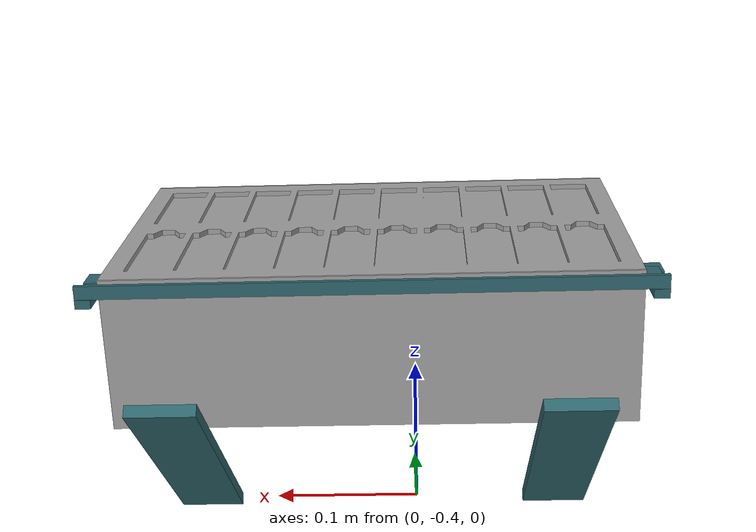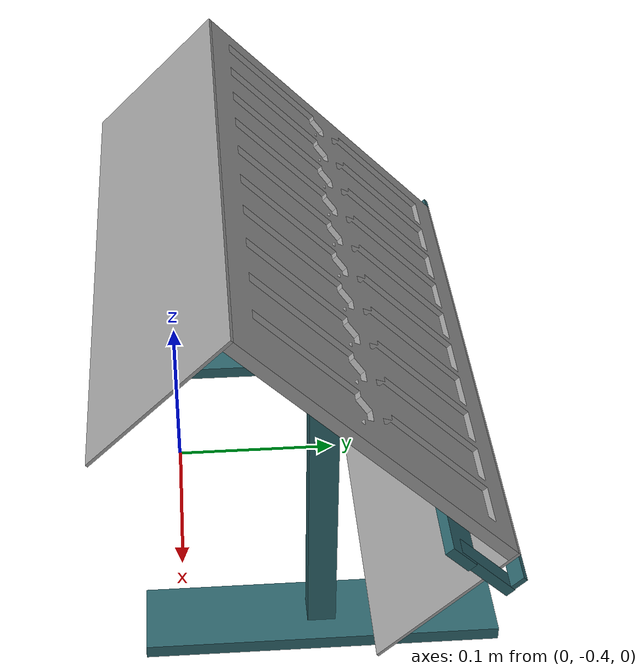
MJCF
<?xml version='1.0' encoding='utf-8'?>
<mujoco model="QC folder cradle 45 degrees - fixed inspection only">
  <compiler angle="radian" />
  <visual>
    <global offwidth="1400" offheight="900" />
  </visual>
  <asset>
    <mesh name="lab_context_qc45_folder_visual_0" vertex="-0.01200000191 0.02499999237 0.003600000143 -0.004205774307 0.02050000381 0.003600000143 -0.004205774307 0.01150000763 0.003600000143 -0.01200000191 0.007 0.003600000143 -0.01200000191 0.007 0.007200000286 -0.004205774307 0.01150000763 0.007200000286 -0.004205774307 0.02050000381 0.007200000286 -0.01200000191 0.02499999237 0.007200000286 0.01200000381 -0.03900000381 0.003600000143 0.01200000381 -0.03449999619 0.003600000143 0.01200000381 -0.03449999619 0.007200000286 0.01200000381 -0.03900000381 0.007200000286 0.08899999237 -0.02949999619 0.003600000143 0.01200000381 -0.02949999619 0.003600000143 0.01200000381 -0.02949999619 0.007200000286 0.08899999237 -0.02949999619 0.007200000286 -0.089 -0.1255 0.003600000143 -0.089 -0.09850000191 0.003600000143 -0.089 -0.09850000191 0.007200000286 -0.089 -0.1255 0.007200000286 -0.089 -0.03449999619 0.003600000143 -0.01200000191 -0.03449999619 0.003600000143 -0.01200000191 -0.03449999619 0.007200000286 -0.089 -0.03449999619 0.007200000286 -0.089 0.06650000763 0.003600000143 -0.089 0.09349999619 0.003600000143 -0.089 0.09349999619 0.007200000286 -0.089 0.06650000763 0.007200000286 -0.089 -0.1305 0.003600000143 -0.01200000191 -0.1305 0.003600000143 -0.01200000191 -0.1305 0.007200000286 -0.089 -0.1305 0.007200000286 -0.01200000191 -0.09850000191 0.003600000143 -0.01200000191 -0.103 0.003600000143 -0.01200000191 -0.103 0.007200000286 -0.01200000191 -0.09850000191 0.007200000286 -0.01200000191 0.07099999619 0.003600000143 -0.004205774307 0.07550000381 0.003600000143 -0.004205774307 0.0845 0.003600000143 -0.01200000191 0.08900000763 0.003600000143 -0.01200000191 0.09349999619 0.003600000143 -0.01200000191 0.06650000763 0.003600000143 -0.089 0.1574999924 0.003600000143 -0.01200000191 0.1574999924 0.003600000143 -0.01200000191 0.1574999924 0.007200000286 -0.089 0.1574999924 0.007200000286 0.01200000381 -0.05699999619 0.003600000143 0.004205766678 -0.05249999809 0.003600000143 0.004205766678 -0.04350000191 0.003600000143 0.004205766678 -0.04350000191 0.007200000286 0.004205766678 -0.05249999809 0.007200000286 0.01200000381 -0.05699999619 0.007200000286 0.01200000381 -0.103 0.003600000143 0.01200000381 -0.09850000191 0.003600000143 0.01200000381 -0.09850000191 0.007200000286 0.01200000381 -0.103 0.007200000286 0.01200000381 -0.07100000191 0.003600000143 0.004205766678 -0.0755 0.003600000143 0.004205766678 -0.08449999619 0.003600000143 0.01200000381 -0.08900000381 0.003600000143 0.01200000381 -0.09350000191 0.003600000143 0.08899999237 -0.09350000191 0.003600000143 0.08899999237 -0.06650000381 0.003600000143 0.01200000381 -0.06650000381 0.003600000143 0.08899999237 0.1574999924 0.003600000143 0.08899999237 0.1305000038 0.003600000143 0.08899999237 0.1305000038 0.007200000286 0.08899999237 0.1574999924 0.007200000286 0.01200000381 -0.002500007629 0.003600000143 0.08899999237 -0.002500007629 0.003600000143 0.08899999237 -0.002500007629 0.007200000286 0.01200000381 -0.002500007629 0.007200000286 0.01200000381 0.1529999847 0.003600000143 0.01200000381 0.1574999924 0.003600000143 0.01200000381 0.1574999924 0.007200000286 0.01200000381 0.1529999847 0.007200000286 0.1039999924 -0.1705 0 0.1039999924 0.1704999847 0 0.1039999924 0.1704999847 0.007200000286 0.1039999924 -0.1705 0.007200000286 0.08899999237 0.09849999619 0.003600000143 0.01200000381 0.09849999619 0.003600000143 0.01200000381 0.09849999619 0.007200000286 0.08899999237 0.09849999619 0.007200000286 0.01200000381 0.0295 0.003600000143 0.08899999237 0.0295 0.003600000143 0.08899999237 0.0295 0.007200000286 0.01200000381 0.0295 0.007200000286 -0.01200000191 0.002499992371 0.003600000143 -0.01200000191 0.002499992371 0.007200000286 -0.01200000191 -0.002500007629 0.003600000143 -0.01200000191 -0.006999996185 0.003600000143 -0.01200000191 -0.006999996185 0.007200000286 -0.01200000191 -0.002500007629 0.007200000286 -0.01200000191 0.07099999619 0.007200000286 -0.004205774307 0.07550000381 0.007200000286 -0.004205774307 0.0845 0.007200000286 -0.01200000191 0.08900000763 0.007200000286 0.01200000381 0.1255000038 0.003600000143 0.08899999237 0.1255000038 0.003600000143 0.08899999237 0.1255000038 0.007200000286 0.01200000381 0.1255000038 0.007200000286 0.08899999237 -0.09850000191 0.003600000143 0.08899999237 -0.1255 0.003600000143 0.08899999237 -0.1255 0.007200000286 0.08899999237 -0.09850000191 0.007200000286 -0.01200000191 0.1305000038 0.003600000143 -0.089 0.1305000038 0.003600000143 -0.089 0.1305000038 0.007200000286 -0.01200000191 0.1305000038 0.007200000286 0.08899999237 -0.09350000191 0.007200000286 0.08899999237 -0.06650000381 0.007200000286 0.01200000381 0.09349999619 0.003600000143 0.08899999237 0.09349999619 0.003600000143 0.08899999237 0.09349999619 0.007200000286 0.01200000381 0.09349999619 0.007200000286 -0.01200000191 -0.1210000019 0.003600000143 -0.01200000191 -0.1255 0.003600000143 -0.01200000191 -0.1255 0.007200000286 -0.01200000191 -0.1210000019 0.007200000286 -0.01200000191 -0.1350000005 0.003600000143 -0.004205774307 -0.139500001 0.003600000143 -0.004205774307 -0.1484999995 0.003600000143 -0.01200000191 -0.153 0.003600000143 -0.01200000191 -0.153 0.007200000286 -0.004205774307 -0.1484999995 0.007200000286 -0.004205774307 -0.139500001 0.007200000286 -0.01200000191 -0.1350000005 0.007200000286 -0.01200000191 -0.1575000005 0.003600000143 -0.089 -0.1575000005 0.003600000143 -0.089 -0.1575000005 0.007200000286 -0.01200000191 -0.1575000005 0.007200000286 -0.01200000191 0.06650000763 0.007200000286 -0.104 -0.1705 0 -0.104 0.1704999847 0 0.01200000381 0.1030000038 0.003600000143 0.004205766678 0.1074999924 0.003600000143 0.004205766678 0.1165000076 0.003600000143 0.01200000381 0.1209999962 0.003600000143 0.01200000381 0.1209999962 0.007200000286 0.004205766678 0.1165000076 0.007200000286 0.004205766678 0.1074999924 0.007200000286 0.01200000381 0.1030000038 0.007200000286 -0.089 0.1255000038 0.003600000143 -0.01200000191 0.1255000038 0.003600000143 -0.01200000191 0.1255000038 0.007200000286 -0.089 0.1255000038 0.007200000286 0.01200000381 0.03900000763 0.003600000143 0.004205766678 0.04349999619 0.003600000143 0.004205766678 0.05249999237 0.003600000143 0.01200000381 0.057 0.003600000143 0.01200000381 0.057 0.007200000286 0.004205766678 0.05249999237 0.007200000286 0.004205766678 0.04349999619 0.007200000286 0.01200000381 0.03900000763 0.007200000286 0.08899999237 0.06150000763 0.003600000143 0.08899999237 0.0345 0.003600000143 0.08899999237 0.0345 0.007200000286 0.08899999237 0.06150000763 0.007200000286 -0.089 0.0295 0.003600000143 -0.01200000191 0.0295 0.003600000143 -0.01200000191 0.0295 0.007200000286 -0.089 0.0295 0.007200000286 0.08899999237 -0.03449999619 0.003600000143 0.08899999237 -0.03449999619 0.007200000286 -0.089 0.06150000763 0.003600000143 -0.01200000191 0.06150000763 0.003600000143 -0.01200000191 0.06150000763 0.007200000286 -0.089 0.06150000763 0.007200000286 -0.089 0.0345 0.003600000143 -0.089 0.0345 0.007200000286 -0.01200000191 0.057 0.003600000143 -0.01200000191 0.057 0.007200000286 -0.01200000191 0.03900000763 0.003600000143 -0.004205774307 0.04349999619 0.003600000143 -0.004205774307 0.05249999237 0.003600000143 -0.01200000191 0.0345 0.003600000143 -0.089 0.002499992371 0.003600000143 -0.089 0.002499992371 0.007200000286 -0.089 -0.002500007629 0.003600000143 -0.089 -0.002500007629 0.007200000286 -0.01200000191 -0.09350000191 0.003600000143 -0.089 -0.09350000191 0.003600000143 -0.089 -0.09350000191 0.007200000286 -0.01200000191 -0.09350000191 0.007200000286 -0.01200000191 -0.07100000191 0.003600000143 -0.004205774307 -0.0755 0.003600000143 -0.004205774307 -0.08449999619 0.003600000143 -0.01200000191 -0.08900000381 0.003600000143 -0.01200000191 -0.08900000381 0.007200000286 -0.004205774307 -0.08449999619 0.007200000286 -0.004205774307 -0.0755 0.007200000286 -0.01200000191 -0.07100000191 0.007200000286 -0.01200000191 0.03900000763 0.007200000286 -0.004205774307 0.04349999619 0.007200000286 -0.004205774307 0.05249999237 0.007200000286 0.01200000381 0.02499999237 0.003600000143 0.004205766678 0.02050000381 0.003600000143 0.004205766678 0.01150000763 0.003600000143 0.01200000381 0.007 0.003600000143 0.01200000381 0.002499992371 0.003600000143 0.08899999237 0.002499992371 0.003600000143 -0.01200000191 -0.05699999619 0.003600000143 -0.01200000191 -0.06150000381 0.003600000143 -0.01200000191 -0.06150000381 0.007200000286 -0.01200000191 -0.05699999619 0.007200000286 0.01200000381 0.06150000763 0.003600000143 0.01200000381 0.06150000763 0.007200000286 -0.004205774307 -0.116499999 0.003600000143 -0.004205774307 -0.1074999981 0.003600000143 0.01200000381 -0.1210000019 0.003600000143 0.004205766678 -0.116499999 0.003600000143 0.004205766678 -0.1074999981 0.003600000143 0.004205766678 -0.1074999981 0.007200000286 0.004205766678 -0.116499999 0.007200000286 0.01200000381 -0.1210000019 0.007200000286 0.01200000381 0.02499999237 0.007200000286 0.01200000381 0.0345 0.003600000143 0.01200000381 0.0345 0.007200000286 -0.01200000191 0.09349999619 0.007200000286 -0.01200000191 0.1209999962 0.003600000143 -0.01200000191 0.1209999962 0.007200000286 -0.01200000191 0.1529999847 0.003600000143 -0.01200000191 0.1529999847 0.007200000286 -0.01200000191 -0.02499999809 0.003600000143 -0.004205774307 -0.0205 0.003600000143 -0.004205774307 -0.01150000381 0.003600000143 -0.089 -0.02949999619 0.003600000143 -0.01200000191 -0.02949999619 0.003600000143 0.01200000381 0.08900000763 0.003600000143 0.004205766678 0.0845 0.003600000143 0.004205766678 0.07550000381 0.003600000143 0.01200000381 0.07099999619 0.003600000143 0.01200000381 0.06650000763 0.003600000143 0.08899999237 0.06650000763 0.003600000143 -0.01200000191 0.1349999924 0.003600000143 -0.01200000191 0.1349999924 0.007200000286 -0.104 -0.1705 0.007200000286 -0.104 0.1704999847 0.007200000286 0.01200000381 0.1305000038 0.003600000143 0.01200000381 0.1349999924 0.003600000143 0.01200000381 0.1349999924 0.007200000286 0.01200000381 0.1305000038 0.007200000286 0.08899999237 -0.06150000381 0.003600000143 0.08899999237 -0.06150000381 0.007200000286 0.01200000381 -0.1575000005 0.003600000143 0.01200000381 -0.153 0.003600000143 0.01200000381 -0.153 0.007200000286 0.01200000381 -0.1575000005 0.007200000286 0.004205766678 0.1484999962 0.003600000143 0.004205766678 0.1395 0.003600000143 0.01200000381 -0.06650000381 0.007200000286 0.01200000381 -0.07100000191 0.007200000286 0.01200000381 -0.006999996185 0.003600000143 0.01200000381 -0.006999996185 0.007200000286 -0.004205774307 0.1165000076 0.003600000143 -0.004205774307 0.1074999924 0.003600000143 -0.01200000191 0.1030000038 0.003600000143 -0.01200000191 0.1030000038 0.007200000286 -0.004205774307 0.1074999924 0.007200000286 -0.004205774307 0.1165000076 0.007200000286 0.01200000381 -0.08900000381 0.007200000286 0.01200000381 -0.09350000191 0.007200000286 0.01200000381 0.07099999619 0.007200000286 0.01200000381 0.06650000763 0.007200000286 -0.01200000191 0.0345 0.007200000286 -0.089 -0.06150000381 0.003600000143 -0.089 -0.06150000381 0.007200000286 0.08899999237 0.06650000763 0.007200000286 0.004205766678 -0.01150000381 0.003600000143 0.004205766678 -0.0205 0.003600000143 0.01200000381 -0.02499999809 0.003600000143 0.004205766678 -0.0755 0.007200000286 0.004205766678 -0.08449999619 0.007200000286 0.01200000381 -0.1255 0.003600000143 0.01200000381 -0.1255 0.007200000286 0.01200000381 -0.06150000381 0.003600000143 -0.004205774307 0.1484999962 0.003600000143 -0.004205774307 0.1395 0.003600000143 -0.004205774307 0.1395 0.007200000286 -0.004205774307 0.1484999962 0.007200000286 0.004205766678 0.02050000381 0.007200000286 0.004205766678 0.01150000763 0.007200000286 0.01200000381 0.007 0.007200000286 -0.004205774307 -0.05249999809 0.003600000143 -0.004205774307 -0.04350000191 0.003600000143 -0.01200000191 -0.03900000381 0.003600000143 0.01200000381 -0.02499999809 0.007200000286 0.004205766678 -0.0205 0.007200000286 0.004205766678 -0.01150000381 0.007200000286 0.004205766678 -0.1484999995 0.007200000286 0.004205766678 -0.139500001 0.007200000286 0.01200000381 -0.1350000005 0.007200000286 0.01200000381 -0.1305 0.007200000286 0.08899999237 -0.1305 0.007200000286 0.08899999237 -0.1575000005 0.007200000286 -0.01200000191 0.09849999619 0.007200000286 -0.089 0.09849999619 0.007200000286 -0.004205774307 -0.1074999981 0.007200000286 -0.004205774307 -0.116499999 0.007200000286 -0.089 -0.06650000381 0.007200000286 -0.01200000191 -0.06650000381 0.007200000286 -0.01200000191 -0.03900000381 0.007200000286 -0.004205774307 -0.04350000191 0.007200000286 -0.004205774307 -0.05249999809 0.007200000286 -0.01200000191 -0.02499999809 0.007200000286 -0.01200000191 -0.02949999619 0.007200000286 -0.089 -0.02949999619 0.007200000286 -0.004205774307 -0.01150000381 0.007200000286 -0.004205774307 -0.0205 0.007200000286 0.01200000381 -0.06150000381 0.007200000286 0.01200000381 0.002499992371 0.007200000286 0.08899999237 0.002499992371 0.007200000286 0.004205766678 0.07550000381 0.007200000286 0.004205766678 0.0845 0.007200000286 0.01200000381 0.08900000763 0.007200000286 0.004205766678 0.1395 0.007200000286 0.004205766678 0.1484999962 0.007200000286 0.01200000381 -0.1350000005 0.003600000143 0.01200000381 -0.1305 0.003600000143 -0.089 -0.06650000381 0.003600000143 -0.01200000191 -0.06650000381 0.003600000143 0.08899999237 -0.1305 0.003600000143 -0.089 0.09849999619 0.003600000143 -0.01200000191 0.09849999619 0.003600000143 0.004205766678 -0.139500001 0.003600000143 0.004205766678 -0.1484999995 0.003600000143 0.08899999237 -0.1575000005 0.003600000143" face="7 0 6 6 0 1 6 1 5 5 1 2 5 2 4 4 2 3 8 9 11 11 9 10 12 13 15 15 13 14 16 17 19 19 17 18 20 21 23 23 21 22 24 25 27 27 25 26 28 29 31 31 29 30 32 33 35 35 33 34 37 38 36 36 38 39 36 39 24 24 39 25 25 39 40 24 41 36 42 43 45 45 43 44 51 46 50 50 46 47 50 47 49 49 47 48 49 48 11 11 48 8 52 53 55 55 53 54 57 59 56 56 59 61 56 61 62 57 58 59 59 60 61 62 63 56 64 65 67 67 65 66 68 69 71 71 69 70 72 73 75 75 73 74 76 77 79 79 77 78 80 81 83 83 81 82 84 85 87 87 85 86 3 88 4 4 88 89 90 91 93 93 91 92 97 39 96 96 39 38 96 38 95 95 38 37 95 37 94 94 37 36 98 99 101 101 99 100 73 64 74 74 64 67 102 103 105 105 103 104 106 107 109 109 107 108 62 61 111 111 61 110 112 113 115 115 113 114 116 117 119 119 117 118 127 120 126 126 120 121 126 121 125 125 121 122 125 122 124 124 122 123 128 129 131 131 129 130 36 41 94 94 41 132 134 77 133 133 77 76 142 135 141 141 135 136 141 136 140 140 136 137 140 137 139 139 137 138 137 135 138 138 135 80 138 80 99 137 136 135 135 81 80 99 98 138 143 144 146 146 144 145 154 147 153 153 147 148 153 148 152 152 148 149 152 149 151 151 149 150 155 156 158 158 156 157 159 160 162 162 160 161 9 163 10 10 163 164 165 166 168 168 166 167 169 165 170 170 165 168 166 171 167 167 171 172 174 175 173 173 175 171 173 171 169 169 171 165 165 171 166 169 176 173 177 159 178 178 159 162 160 0 161 161 0 7 2 1 3 3 1 0 3 0 177 177 0 159 159 0 160 177 88 3 179 90 180 180 90 93 181 182 184 184 182 183 192 185 191 191 185 186 191 186 190 190 186 187 190 187 189 189 187 188 172 171 195 195 171 175 195 175 194 194 175 174 194 174 193 193 174 173 197 199 196 196 199 201 196 201 85 197 198 199 199 200 201 85 84 196 202 203 205 205 203 204 150 206 151 151 206 207 208 209 116 116 209 33 116 33 16 16 33 17 17 33 32 16 117 116 215 210 214 214 210 211 214 211 213 213 211 212 213 212 55 55 212 52 53 102 54 54 102 105 196 84 216 216 84 87 217 147 218 218 147 154 25 40 26 26 40 219 144 220 145 145 220 221 43 222 44 44 222 223 225 226 224 224 226 91 224 91 227 227 91 179 179 91 90 227 228 224 230 232 229 229 232 234 229 234 113 230 231 232 232 233 234 113 112 229 235 106 236 236 106 109 81 135 82 82 135 142 129 28 130 130 28 31 134 133 238 238 133 237 239 240 242 242 240 241 149 147 150 150 147 156 150 156 155 149 148 147 147 217 156 155 206 150 77 134 78 78 134 238 163 243 164 164 243 244 245 246 248 248 246 247 99 80 100 100 80 83 41 24 132 132 24 27 249 240 72 72 240 65 72 65 64 249 250 240 240 239 65 64 73 72 56 63 252 252 63 251 253 68 254 254 68 71 221 220 260 260 220 255 260 255 259 259 255 256 259 256 258 258 256 257 60 59 262 262 59 261 61 60 110 110 60 262 233 232 264 264 232 263 173 176 193 193 176 265 123 128 124 124 128 131 266 20 267 267 20 23 234 233 268 268 233 264 206 155 207 207 155 158 138 98 139 139 98 101 269 271 253 253 271 12 253 12 69 269 270 271 271 13 12 69 68 253 69 12 70 70 12 15 261 59 273 273 59 58 273 58 272 272 58 57 272 57 252 252 57 56 274 210 275 275 210 215 48 46 8 8 46 243 8 243 163 48 47 46 46 276 243 163 9 8 223 222 280 280 222 277 280 277 279 279 277 278 279 278 236 236 278 235 40 39 219 219 39 97 283 199 282 282 199 198 282 198 281 281 198 197 281 197 216 216 197 196 284 285 202 202 285 286 202 286 266 266 286 20 20 286 21 266 203 202 142 141 82 82 141 314 82 314 115 115 314 315 140 260 141 141 260 259 141 259 314 314 259 96 314 96 313 313 96 95 313 95 152 152 95 195 152 195 153 153 195 194 153 194 281 281 194 6 281 6 282 282 6 5 282 5 289 289 5 308 289 308 288 288 308 309 288 309 49 49 309 303 49 303 50 50 303 304 50 304 272 272 304 191 272 191 273 273 191 190 273 190 213 213 190 298 213 298 214 214 298 299 214 299 291 291 299 126 291 126 290 290 126 125 290 125 248 248 125 131 248 131 79 79 131 237 237 131 130 237 130 31 139 101 140 140 101 242 140 242 316 316 242 241 101 100 242 242 100 66 66 100 78 66 78 67 67 78 74 74 78 238 74 238 44 44 238 45 45 238 108 108 238 146 108 146 145 100 83 78 78 83 114 78 114 268 83 82 114 114 82 115 154 153 218 218 153 281 218 281 87 87 281 216 151 207 152 152 207 264 152 264 313 313 264 263 207 158 264 264 158 268 268 158 78 158 157 78 78 157 86 78 86 312 157 218 86 86 218 87 287 288 14 14 288 49 14 49 10 10 49 11 254 71 289 289 71 311 289 311 282 282 311 283 71 70 311 311 70 312 312 70 79 312 79 78 70 15 79 79 15 164 79 164 244 15 14 164 164 14 10 261 273 262 262 273 213 262 213 54 54 213 55 252 251 272 272 251 310 272 310 50 50 310 51 251 111 310 310 111 244 244 111 79 111 110 79 79 110 105 79 105 104 110 262 105 105 262 54 248 247 290 292 293 291 291 293 275 291 275 214 214 275 215 293 294 275 275 294 104 104 294 79 294 295 79 79 295 248 258 296 259 259 296 96 96 296 219 219 296 297 219 297 26 26 297 238 26 238 27 27 238 168 27 168 167 297 146 238 221 260 145 145 260 109 145 109 108 237 178 238 238 178 162 238 162 170 170 162 161 170 161 265 265 161 6 265 6 194 124 131 125 237 31 19 19 31 30 19 30 118 118 30 126 118 126 299 30 127 126 119 118 299 19 18 237 237 18 183 237 183 300 18 35 183 183 35 184 184 35 298 184 298 190 35 34 298 189 184 190 237 300 267 267 300 301 267 301 204 204 301 191 204 191 304 301 192 191 205 204 304 267 23 237 237 23 307 237 307 180 23 22 307 307 22 306 306 22 303 306 303 309 22 302 303 305 306 309 237 180 178 178 180 93 178 93 89 89 93 308 89 308 5 93 92 308 4 89 5 161 7 6 193 265 194 170 168 238 172 195 167 167 195 132 167 132 27 94 132 95 95 132 195 219 97 96 236 109 279 279 109 260 279 260 140 223 280 44 44 280 317 44 317 74 74 317 75 317 280 316 316 280 279 316 279 140 243 276 244 244 276 310 63 62 251 251 62 111 276 46 310 310 46 51 224 228 305 305 228 306 227 179 307 307 179 180 34 33 298 298 33 209 298 209 299 299 209 208 299 208 119 119 208 116 318 319 292 292 319 293 320 321 300 300 321 301 319 322 293 293 322 294 256 255 257 257 255 220 257 220 323 323 220 143 143 220 144 323 324 257 17 32 18 18 32 35 65 239 66 66 239 242 324 323 296 296 323 297 325 246 318 318 246 327 318 327 322 325 326 246 246 245 327 322 319 318 200 199 311 311 199 283 21 286 22 22 286 302 302 286 303 303 286 285 303 285 304 304 285 284 304 284 205 205 284 202 241 240 316 316 240 250 316 250 317 317 250 249 317 249 75 75 249 72 228 227 306 306 227 307 122 121 123 123 121 120 123 120 129 129 120 28 28 120 29 129 128 123 229 112 315 315 112 115 29 120 30 30 120 127 113 234 114 114 234 268 201 200 312 312 200 311 85 201 86 86 201 312 203 266 204 204 266 267 188 181 189 189 181 184 13 271 14 14 271 287 92 91 308 308 91 226 308 226 309 309 226 225 309 225 305 305 225 224 321 185 301 301 185 192 278 277 235 235 277 222 235 222 107 107 222 42 42 222 43 107 106 235 117 16 118 118 16 19 323 143 297 297 143 146 103 274 104 104 274 275 187 186 188 188 186 185 188 185 182 182 185 320 320 185 321 182 181 188 107 42 108 108 42 45 88 177 89 89 177 178 176 169 265 265 169 170 247 246 290 290 246 326 290 326 291 291 326 325 291 325 292 292 325 318 287 271 288 288 271 270 288 270 289 289 270 269 289 269 254 254 269 253 156 217 157 157 217 218 133 76 237 237 76 79 257 324 258 258 324 296 263 232 313 313 232 231 313 231 314 314 231 230 314 230 315 315 230 229 182 320 183 183 320 300 322 327 294 294 327 295 327 245 295 295 245 248 212 210 52 52 210 103 52 103 102 212 211 210 210 274 103 102 53 52" inertia="shell" />
    <mesh name="lab_context_qc45_folder_visual_1" vertex="-0.1040000003 -0.1705 -0.09580000191 -0.1040000003 0.1704999847 -0.09580000191 -0.1040000003 0.1704999847 0.0072 -0.1040000003 -0.1705 0.0072 -0.1057999998 0.1704999847 -0.09580000191 -0.1057999998 0.1704999847 0.0072 -0.1057999998 -0.1705 -0.09580000191 -0.1057999998 -0.1705 0.0072" face="1 2 0 0 2 3 2 1 5 5 1 4 6 7 4 4 7 5 3 2 7 7 2 5 1 0 4 4 0 6 0 3 6 6 3 7" inertia="shell" />
    <mesh name="lab_context_qc45_folder_visual_2" vertex="0.1040000003 -0.1705 0.007200007629 0.1040000003 -0.1705 -0.09580000381 0.1057999998 -0.1705 -0.09580000381 0.1057999998 -0.1705 0.007200007629 0.1040000003 0.1704999847 -0.09580000381 0.1057999998 0.1704999847 -0.09580000381 0.1057999998 0.1704999847 0.007200007629 0.1040000003 0.1704999847 0.007200007629" face="0 1 3 3 1 2 1 4 2 2 4 5 3 2 6 6 2 5 4 7 5 5 7 6 7 0 6 6 0 3 7 4 0 0 4 1" inertia="shell" />
  </asset>
  <worldbody>
    <body name="lab_context_qc45_fixture" pos="0 0 0.0697">
      <body name="lab_context_qc45_folder_fixture" pos="0.026 -0.3 0.09" quat="0.6532814824 -0.2705980501 -0.2705980501 -0.6532814824">
        <geom name="lab_context_qc45_folder_visual_0" type="mesh" mesh="lab_context_qc45_folder_visual_0" rgba="0.6274509804 0.6274509804 0.6274509804 1" contype="0" conaffinity="0" group="1" density="0" />
        <geom name="lab_context_qc45_folder_visual_1" type="mesh" mesh="lab_context_qc45_folder_visual_1" rgba="0.6274509804 0.6274509804 0.6274509804 1" contype="0" conaffinity="0" group="1" density="0" />
        <geom name="lab_context_qc45_folder_visual_2" type="mesh" mesh="lab_context_qc45_folder_visual_2" rgba="0.6274509804 0.6274509804 0.6274509804 1" contype="0" conaffinity="0" group="1" density="0" />
      </body>
      <geom name="lab_context_qc45_stand45_backing" type="box" pos="0.026 -0.3049497475 0.08505025253" size="0.085 0.149 0.003" quat="0.6532814824 -0.2705980501 -0.2705980501 -0.6532814824" rgba=".18 .40 .43 1" friction=".5 .005 .0001" contype="0" conaffinity="0" density="0" group="1" />
      <geom name="lab_context_qc45_stand45_lower_stop" type="box" pos="0.026 -0.2232789142 0.01398602102" size="0.0015 0.185 0.0045" quat="0.6532814824 -0.2705980501 -0.2705980501 -0.6532814824" rgba=".18 .40 .43 1" friction=".5 .005 .0001" contype="0" conaffinity="0" density="0" group="1" />
      <geom name="lab_context_qc45_stand45_stop_link_-1" type="box" pos="-0.138 -0.2554522728 0.03555277785" size="0.009 0.023 0.003" quat="0.6532814824 -0.2705980501 -0.2705980501 -0.6532814824" rgba=".18 .40 .43 1" friction=".5 .005 .0001" contype="0" conaffinity="0" density="0" group="1" />
      <geom name="lab_context_qc45_stand45_stop_arm_-1" type="box" pos="-0.154 -0.2420172439 0.02211774901" size="0.021 0.005 0.003" quat="0.6532814824 -0.2705980501 -0.2705980501 -0.6532814824" rgba=".18 .40 .43 1" friction=".5 .005 .0001" contype="0" conaffinity="0" density="0" group="1" />
      <geom name="lab_context_qc45_stand45_stop_link_1" type="box" pos="0.19 -0.2554522728 0.03555277785" size="0.009 0.023 0.003" quat="0.6532814824 -0.2705980501 -0.2705980501 -0.6532814824" rgba=".18 .40 .43 1" friction=".5 .005 .0001" contype="0" conaffinity="0" density="0" group="1" />
      <geom name="lab_context_qc45_stand45_stop_arm_1" type="box" pos="0.206 -0.2420172439 0.02211774901" size="0.021 0.005 0.003" quat="0.6532814824 -0.2705980501 -0.2705980501 -0.6532814824" rgba=".18 .40 .43 1" friction=".5 .005 .0001" contype="0" conaffinity="0" density="0" group="1" />
      <geom name="lab_context_qc45_stand45_post_0" type="box" pos="-0.099 -0.3212132034 0.01627132034" size="0.008 0.008 0.07797132034" quat="1 0 0 0" rgba=".18 .40 .43 1" friction=".5 .005 .0001" contype="0" conaffinity="0" density="0" group="1" />
      <geom name="lab_context_qc45_stand45_foot_0" type="box" pos="-0.099 -0.3212132034 -0.0657" size="0.022 0.1 0.004" quat="1 0 0 0" rgba=".18 .40 .43 1" friction=".5 .005 .0001" contype="0" conaffinity="0" density="0" group="1" />
      <geom name="lab_context_qc45_stand45_post_1" type="box" pos="0.151 -0.3212132034 0.01627132034" size="0.008 0.008 0.07797132034" quat="1 0 0 0" rgba=".18 .40 .43 1" friction=".5 .005 .0001" contype="0" conaffinity="0" density="0" group="1" />
      <geom name="lab_context_qc45_stand45_foot_1" type="box" pos="0.151 -0.3212132034 -0.0657" size="0.022 0.1 0.004" quat="1 0 0 0" rgba=".18 .40 .43 1" friction=".5 .005 .0001" contype="0" conaffinity="0" density="0" group="1" />
      <site name="lab_context_qc45_left_access" type="box" pos="-0.199 -0.36 0.075" size="0.04 0.17 0.075" rgba=".1 .65 .9 .18" group="5" />
      <site name="lab_context_qc45_right_access" type="box" pos="0.251 -0.36 0.075" size="0.04 0.17 0.075" rgba=".1 .65 .9 .18" group="5" />
    </body>
  </worldbody>
</mujoco>
